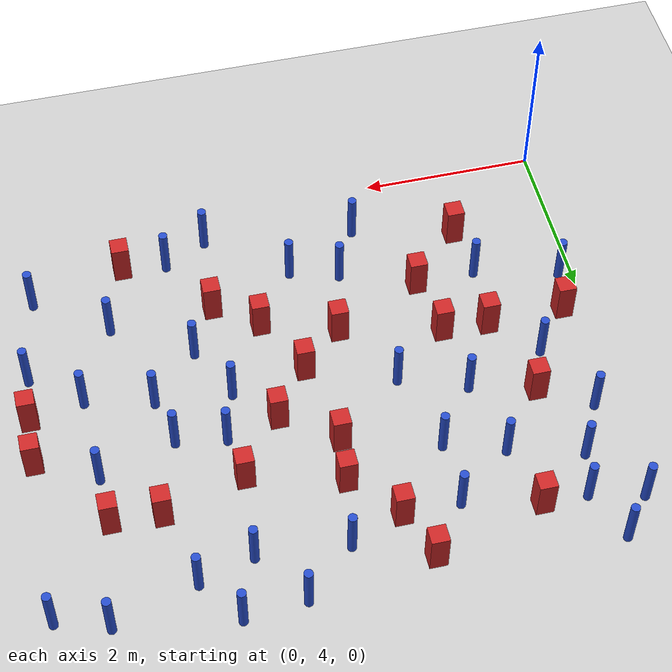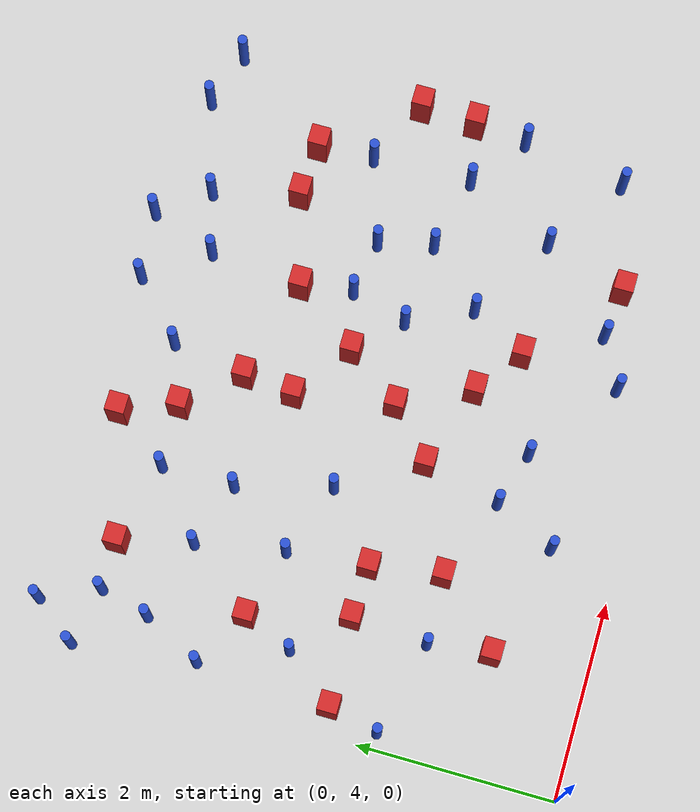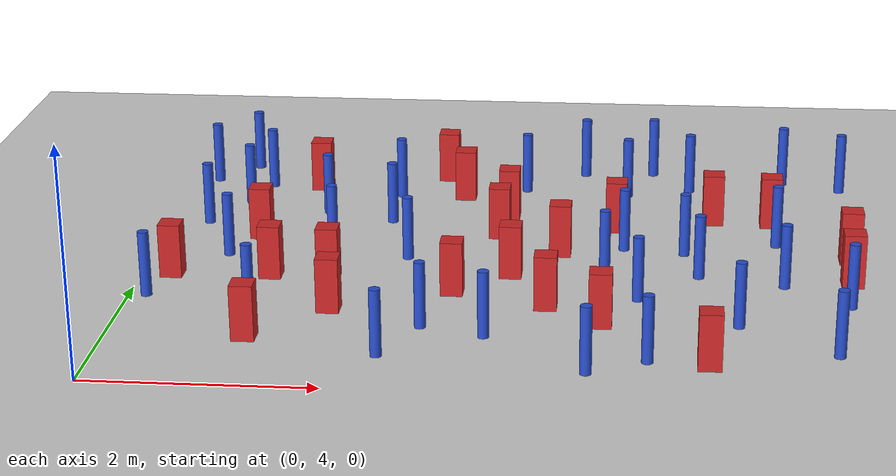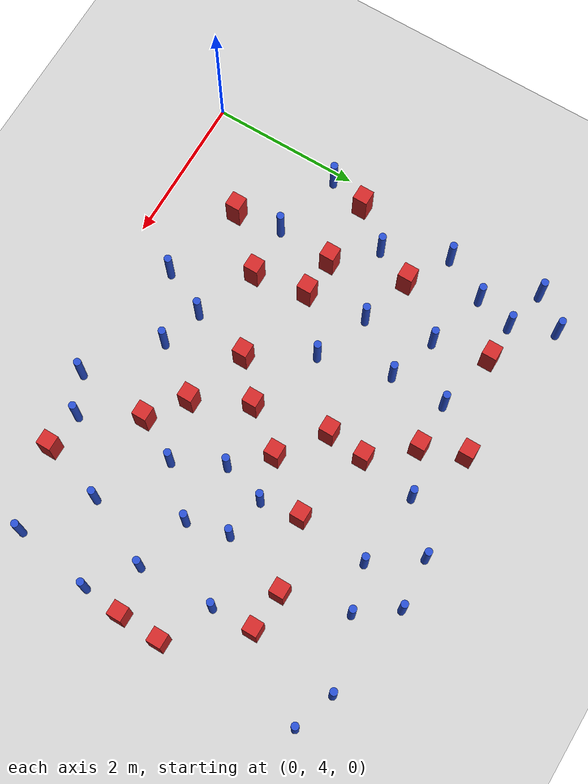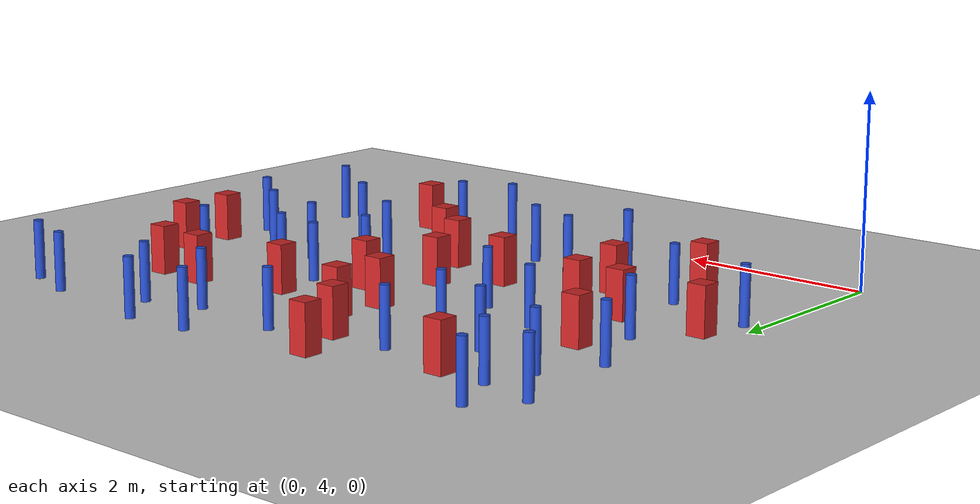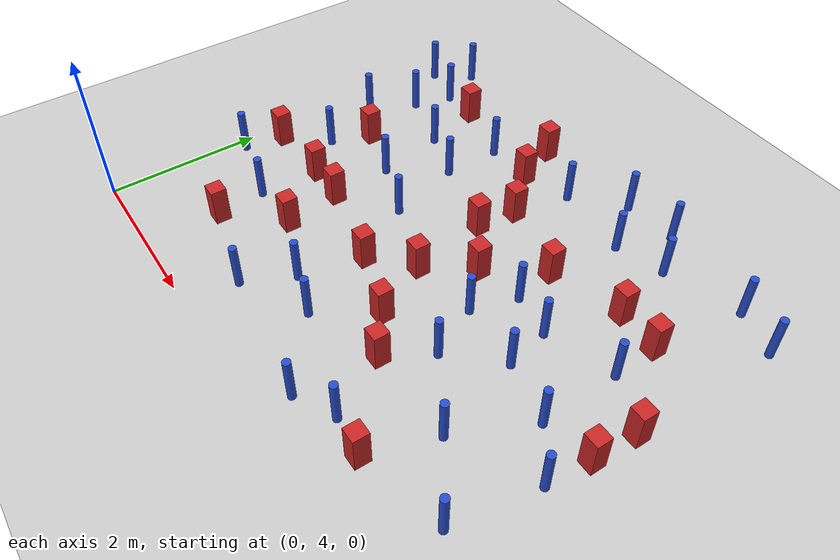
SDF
<sdf version="1.6">
 <world name="default">
  <model name="ground_plane">
   <static>1</static>
   <link name="link">
    <collision name="collision">
     <geometry><plane><normal>0 0 1</normal><size>100 100</size></plane></geometry>
     <surface><friction><ode><mu>100</mu><mu2>50</mu2></ode></friction></surface>
    </collision>
    <visual name="visual">
     <cast_shadows>0</cast_shadows>
     <geometry><plane><normal>0 0 1</normal><size>100 100</size></plane></geometry>
     <material>
      <ambient>1.0 1.0 1.0 1.0</ambient>
      <diffuse>0.8 0.8 0.8 1.0</diffuse>
      <specular>0.01 0.01 0.01 1.000000</specular>
     </material>
    </visual>
   </link>
  </model>
  <model name="pole_obstacle1">
   <static>true</static>
   <pose>5.38026649149 5.48574369236 -3.09024884793e-07 -7.19054271911e-07 -2.1131507516e-07 -1.93935509277e-07</pose>
   <link name="link">
    <pose>0 0 0.3 0 -0 0</pose>
    <inertial>
     <mass>1</mass>
     <inertia><ixx>0.145833</ixx><ixy>0</ixy><ixz>0</ixz><iyy>0.145833</iyy><iyz>0</iyz><izz>0.125</izz></inertia>
    </inertial>
    <collision name="collision">
     <geometry><cylinder><radius>0.05</radius><length>.6</length></cylinder></geometry>
    </collision>
    <visual name="visual">
     <geometry><cylinder><radius>0.05</radius><length>.6</length></cylinder></geometry>
     <material>
      <script><name>Gazebo/Blue</name><uri>file://media/materials/scripts/gazebo.material</uri></script>
     </material>
    </visual>
   </link>
  </model>
  <model name="square_post_obstacle13">
   <static>true</static>
   <pose>2.54253266543 9.15945608791 -4.36207812815e-07 3.75137919937e-06 9.77721102514e-07 2.47381364184e-05</pose>
   <link name="link">
    <pose>0 0 0.25 0 -0 0</pose>
    <inertial>
     <mass>100</mass>
     <inertia>
      <ixx>0.166667</ixx>
      <ixy>0</ixy>
      <ixz>0</ixz>
      <iyy>0.166667</iyy>
      <iyz>0</iyz>
      <izz>0.166667</izz>
     </inertia>
    </inertial>
    <collision name="collision"><geometry><box><size>.2 .2 .5</size></box></geometry></collision>
    <visual name="visual">
     <geometry><box><size>.2 .2 .5</size></box></geometry>
     <material>
      <script><name>Gazebo/Red</name><uri>file://media/materials/scripts/gazebo.material</uri></script>
     </material>
    </visual>
   </link>
  </model>
  <model name="pole_obstacle8">
   <static>true</static>
   <pose>2.66010328651 5.29040970579 -3.09024884793e-07 -7.19054271912e-07 -2.11315075134e-07 -1.93935509266e-07</pose>
   <link name="link">
    <pose>0 0 0.3 0 -0 0</pose>
    <inertial>
     <mass>1</mass>
     <inertia><ixx>0.145833</ixx><ixy>0</ixy><ixz>0</ixz><iyy>0.145833</iyy><iyz>0</iyz><izz>0.125</izz></inertia>
    </inertial>
    <collision name="collision">
     <geometry><cylinder><radius>0.05</radius><length>.6</length></cylinder></geometry>
    </collision>
    <visual name="visual">
     <geometry><cylinder><radius>0.05</radius><length>.6</length></cylinder></geometry>
     <material>
      <script><name>Gazebo/Blue</name><uri>file://media/materials/scripts/gazebo.material</uri></script>
     </material>
    </visual>
   </link>
  </model>
  <model name="square_post_obstacle14">
   <static>true</static>
   <pose>2.76166165576 8.59688035177 -4.36207812815e-07 3.75137919937e-06 9.77721102514e-07 2.47381364184e-05</pose>
   <link name="link">
    <pose>0 0 0.25 0 -0 0</pose>
    <inertial>
     <mass>100</mass>
     <inertia>
      <ixx>0.166667</ixx>
      <ixy>0</ixy>
      <ixz>0</ixz>
      <iyy>0.166667</iyy>
      <iyz>0</iyz>
      <izz>0.166667</izz>
     </inertia>
    </inertial>
    <collision name="collision"><geometry><box><size>.2 .2 .5</size></box></geometry></collision>
    <visual name="visual">
     <geometry><box><size>.2 .2 .5</size></box></geometry>
     <material>
      <script><name>Gazebo/Red</name><uri>file://media/materials/scripts/gazebo.material</uri></script>
     </material>
    </visual>
   </link>
  </model>
  <model name="pole_obstacle18">
   <static>true</static>
   <pose>4.50732417041 6.02375371996 -3.09024884793e-07 -7.19054271911e-07 -2.1131507516e-07 -1.93935509277e-07</pose>
   <link name="link">
    <pose>0 0 0.3 0 -0 0</pose>
    <inertial>
     <mass>1</mass>
     <inertia><ixx>0.145833</ixx><ixy>0</ixy><ixz>0</ixz><iyy>0.145833</iyy><iyz>0</iyz><izz>0.125</izz></inertia>
    </inertial>
    <collision name="collision">
     <geometry><cylinder><radius>0.05</radius><length>.6</length></cylinder></geometry>
    </collision>
    <visual name="visual">
     <geometry><cylinder><radius>0.05</radius><length>.6</length></cylinder></geometry>
     <material>
      <script><name>Gazebo/Blue</name><uri>file://media/materials/scripts/gazebo.material</uri></script>
     </material>
    </visual>
   </link>
  </model>
  <model name="pole_obstacle22">
   <static>true</static>
   <pose>5.81464633451 6.41632035371 -3.09024884793e-07 -7.19054271911e-07 -2.1131507516e-07 -1.93935509277e-07</pose>
   <link name="link">
    <pose>0 0 0.3 0 -0 0</pose>
    <inertial>
     <mass>1</mass>
     <inertia><ixx>0.145833</ixx><ixy>0</ixy><ixz>0</ixz><iyy>0.145833</iyy><iyz>0</iyz><izz>0.125</izz></inertia>
    </inertial>
    <collision name="collision">
     <geometry><cylinder><radius>0.05</radius><length>.6</length></cylinder></geometry>
    </collision>
    <visual name="visual">
     <geometry><cylinder><radius>0.05</radius><length>.6</length></cylinder></geometry>
     <material>
      <script><name>Gazebo/Blue</name><uri>file://media/materials/scripts/gazebo.material</uri></script>
     </material>
    </visual>
   </link>
  </model>
  <model name="pole_obstacle26">
   <static>true</static>
   <pose>0.187268150101 8.93501671482 -3.09024884793e-07 -7.19054271911e-07 -2.11315075161e-07 -1.9393550928e-07</pose>
   <link name="link">
    <pose>0 0 0.3 0 -0 0</pose>
    <inertial>
     <mass>1</mass>
     <inertia><ixx>0.145833</ixx><ixy>0</ixy><ixz>0</ixz><iyy>0.145833</iyy><iyz>0</iyz><izz>0.125</izz></inertia>
    </inertial>
    <collision name="collision">
     <geometry><cylinder><radius>0.05</radius><length>.6</length></cylinder></geometry>
    </collision>
    <visual name="visual">
     <geometry><cylinder><radius>0.05</radius><length>.6</length></cylinder></geometry>
     <material>
      <script><name>Gazebo/Blue</name><uri>file://media/materials/scripts/gazebo.material</uri></script>
     </material>
    </visual>
   </link>
  </model>
  <model name="pole_obstacle30">
   <static>true</static>
   <pose>2.37195982201 6.8903305986 -3.09024884793e-07 -7.19054271912e-07 -2.11315075134e-07 -1.93935509266e-07</pose>
   <link name="link">
    <pose>0 0 0.3 0 -0 0</pose>
    <inertial>
     <mass>1</mass>
     <inertia><ixx>0.145833</ixx><ixy>0</ixy><ixz>0</ixz><iyy>0.145833</iyy><iyz>0</iyz><izz>0.125</izz></inertia>
    </inertial>
    <collision name="collision">
     <geometry><cylinder><radius>0.05</radius><length>.6</length></cylinder></geometry>
    </collision>
    <visual name="visual">
     <geometry><cylinder><radius>0.05</radius><length>.6</length></cylinder></geometry>
     <material>
      <script><name>Gazebo/Blue</name><uri>file://media/materials/scripts/gazebo.material</uri></script>
     </material>
    </visual>
   </link>
  </model>
  <model name="pole_obstacle44">
   <static>true</static>
   <pose>1.45611591994 8.06184827066 -3.09024884793e-07 -7.19054271912e-07 -2.1131507515e-07 -1.93935509273e-07</pose>
   <link name="link">
    <pose>0 0 0.3 0 -0 0</pose>
    <inertial>
     <mass>1</mass>
     <inertia><ixx>0.145833</ixx><ixy>0</ixy><ixz>0</ixz><iyy>0.145833</iyy><iyz>0</iyz><izz>0.125</izz></inertia>
    </inertial>
    <collision name="collision">
     <geometry><cylinder><radius>0.05</radius><length>.6</length></cylinder></geometry>
    </collision>
    <visual name="visual">
     <geometry><cylinder><radius>0.05</radius><length>.6</length></cylinder></geometry>
     <material>
      <script><name>Gazebo/Blue</name><uri>file://media/materials/scripts/gazebo.material</uri></script>
     </material>
    </visual>
   </link>
  </model>
  <model name="pole_obstacle53">
   <static>true</static>
   <pose>3.36045471536 8.83396126772 -3.09024884848e-07 -7.19054271902e-07 -2.11315075199e-07 -1.93935509286e-07</pose>
   <link name="link">
    <pose>0 0 0.3 0 -0 0</pose>
    <inertial>
     <mass>1</mass>
     <inertia><ixx>0.145833</ixx><ixy>0</ixy><ixz>0</ixz><iyy>0.145833</iyy><iyz>0</iyz><izz>0.125</izz></inertia>
    </inertial>
    <collision name="collision">
     <geometry><cylinder><radius>0.05</radius><length>.6</length></cylinder></geometry>
    </collision>
    <visual name="visual">
     <geometry><cylinder><radius>0.05</radius><length>.6</length></cylinder></geometry>
     <material>
      <script><name>Gazebo/Blue</name><uri>file://media/materials/scripts/gazebo.material</uri></script>
     </material>
    </visual>
   </link>
  </model>
  <model name="pole_obstacle58">
   <static>true</static>
   <pose>4.36511978532 7.25159574913 -3.09024884793e-07 -7.19054271911e-07 -2.1131507516e-07 -1.93935509277e-07</pose>
   <link name="link">
    <pose>0 0 0.3 0 -0 0</pose>
    <inertial>
     <mass>1</mass>
     <inertia><ixx>0.145833</ixx><ixy>0</ixy><ixz>0</ixz><iyy>0.145833</iyy><iyz>0</iyz><izz>0.125</izz></inertia>
    </inertial>
    <collision name="collision">
     <geometry><cylinder><radius>0.05</radius><length>.6</length></cylinder></geometry>
    </collision>
    <visual name="visual">
     <geometry><cylinder><radius>0.05</radius><length>.6</length></cylinder></geometry>
     <material>
      <script><name>Gazebo/Blue</name><uri>file://media/materials/scripts/gazebo.material</uri></script>
     </material>
    </visual>
   </link>
  </model>
  <model name="pole_obstacle60">
   <static>true</static>
   <pose>0.699789372789 6.86366089136 -3.09024884793e-07 -7.19054271912e-07 -2.11315075129e-07 -1.93935509261e-07</pose>
   <link name="link">
    <pose>0 0 0.3 0 -0 0</pose>
    <inertial>
     <mass>1</mass>
     <inertia><ixx>0.145833</ixx><ixy>0</ixy><ixz>0</ixz><iyy>0.145833</iyy><iyz>0</iyz><izz>0.125</izz></inertia>
    </inertial>
    <collision name="collision">
     <geometry><cylinder><radius>0.05</radius><length>.6</length></cylinder></geometry>
    </collision>
    <visual name="visual">
     <geometry><cylinder><radius>0.05</radius><length>.6</length></cylinder></geometry>
     <material>
      <script><name>Gazebo/Blue</name><uri>file://media/materials/scripts/gazebo.material</uri></script>
     </material>
    </visual>
   </link>
  </model>
  <model name="pole_obstacle61">
   <static>true</static>
   <pose>4.10413252432 4.44278507739 -3.09024884793e-07 -7.19054271911e-07 -2.1131507516e-07 -1.93935509277e-07</pose>
   <link name="link">
    <pose>0 0 0.3 0 -0 0</pose>
    <inertial>
     <mass>1</mass>
     <inertia><ixx>0.145833</ixx><ixy>0</ixy><ixz>0</ixz><iyy>0.145833</iyy><iyz>0</iyz><izz>0.125</izz></inertia>
    </inertial>
    <collision name="collision">
     <geometry><cylinder><radius>0.05</radius><length>.6</length></cylinder></geometry>
    </collision>
    <visual name="visual">
     <geometry><cylinder><radius>0.05</radius><length>.6</length></cylinder></geometry>
     <material>
      <script><name>Gazebo/Blue</name><uri>file://media/materials/scripts/gazebo.material</uri></script>
     </material>
    </visual>
   </link>
  </model>
  <model name="pole_obstacle62">
   <static>true</static>
   <pose>2.36133899596 4.66959848623 -3.09024884793e-07 -7.19054271912e-07 -2.11315075134e-07 -1.93935509266e-07</pose>
   <link name="link">
    <pose>0 0 0.3 0 -0 0</pose>
    <inertial>
     <mass>1</mass>
     <inertia><ixx>0.145833</ixx><ixy>0</ixy><ixz>0</ixz><iyy>0.145833</iyy><iyz>0</iyz><izz>0.125</izz></inertia>
    </inertial>
    <collision name="collision">
     <geometry><cylinder><radius>0.05</radius><length>.6</length></cylinder></geometry>
    </collision>
    <visual name="visual">
     <geometry><cylinder><radius>0.05</radius><length>.6</length></cylinder></geometry>
     <material>
      <script><name>Gazebo/Blue</name><uri>file://media/materials/scripts/gazebo.material</uri></script>
     </material>
    </visual>
   </link>
  </model>
  <model name="square_post_obstacle76">
   <static>true</static>
   <pose>6.45238056943 7.10489939612 -4.36207812815e-07 3.75137919937e-06 9.77721102514e-07 2.47381364184e-05</pose>
   <link name="link">
    <pose>0 0 0.25 0 -0 0</pose>
    <inertial>
     <mass>100</mass>
     <inertia>
      <ixx>0.166667</ixx>
      <ixy>0</ixy>
      <ixz>0</ixz>
      <iyy>0.166667</iyy>
      <iyz>0</iyz>
      <izz>0.166667</izz>
     </inertia>
    </inertial>
    <collision name="collision"><geometry><box><size>.2 .2 .5</size></box></geometry></collision>
    <visual name="visual">
     <geometry><box><size>.2 .2 .5</size></box></geometry>
     <material>
      <script><name>Gazebo/Red</name><uri>file://media/materials/scripts/gazebo.material</uri></script>
     </material>
    </visual>
   </link>
  </model>
  <model name="pole_obstacle72">
   <static>true</static>
   <pose>6.37454830373 5.98330063779 -3.09024884793e-07 -7.19054271911e-07 -2.1131507516e-07 -1.93935509277e-07</pose>
   <link name="link">
    <pose>0 0 0.3 0 -0 0</pose>
    <inertial>
     <mass>1</mass>
     <inertia><ixx>0.145833</ixx><ixy>0</ixy><ixz>0</ixz><iyy>0.145833</iyy><iyz>0</iyz><izz>0.125</izz></inertia>
    </inertial>
    <collision name="collision">
     <geometry><cylinder><radius>0.05</radius><length>.6</length></cylinder></geometry>
    </collision>
    <visual name="visual">
     <geometry><cylinder><radius>0.05</radius><length>.6</length></cylinder></geometry>
     <material>
      <script><name>Gazebo/Blue</name><uri>file://media/materials/scripts/gazebo.material</uri></script>
     </material>
    </visual>
   </link>
  </model>
  <model name="pole_obstacle75">
   <static>true</static>
   <pose>4.99019746037 8.92230137979 -3.09024884793e-07 -7.19054271912e-07 -2.1131507513e-07 -1.93935509261e-07</pose>
   <link name="link">
    <pose>0 0 0.3 0 -0 0</pose>
    <inertial>
     <mass>1</mass>
     <inertia><ixx>0.145833</ixx><ixy>0</ixy><ixz>0</ixz><iyy>0.145833</iyy><iyz>0</iyz><izz>0.125</izz></inertia>
    </inertial>
    <collision name="collision">
     <geometry><cylinder><radius>0.05</radius><length>.6</length></cylinder></geometry>
    </collision>
    <visual name="visual">
     <geometry><cylinder><radius>0.05</radius><length>.6</length></cylinder></geometry>
     <material>
      <script><name>Gazebo/Blue</name><uri>file://media/materials/scripts/gazebo.material</uri></script>
     </material>
    </visual>
   </link>
  </model>
  <model name="pole_obstacle88">
   <static>true</static>
   <pose>2.11425900414 7.84481002918 -3.09024884793e-07 -7.19054271912e-07 -2.11315075134e-07 -1.93935509266e-07</pose>
   <link name="link">
    <pose>0 0 0.3 0 -0 0</pose>
    <inertial>
     <mass>1</mass>
     <inertia><ixx>0.145833</ixx><ixy>0</ixy><ixz>0</ixz><iyy>0.145833</iyy><iyz>0</iyz><izz>0.125</izz></inertia>
    </inertial>
    <collision name="collision">
     <geometry><cylinder><radius>0.05</radius><length>.6</length></cylinder></geometry>
    </collision>
    <visual name="visual">
     <geometry><cylinder><radius>0.05</radius><length>.6</length></cylinder></geometry>
     <material>
      <script><name>Gazebo/Blue</name><uri>file://media/materials/scripts/gazebo.material</uri></script>
     </material>
    </visual>
   </link>
  </model>
  <model name="pole_obstacle89">
   <static>true</static>
   <pose>3.93647625684 9.35745305252 -3.09024884848e-07 -7.19054271902e-07 -2.11315075199e-07 -1.93935509286e-07</pose>
   <link name="link">
    <pose>0 0 0.3 0 -0 0</pose>
    <inertial>
     <mass>1</mass>
     <inertia><ixx>0.145833</ixx><ixy>0</ixy><ixz>0</ixz><iyy>0.145833</iyy><iyz>0</iyz><izz>0.125</izz></inertia>
    </inertial>
    <collision name="collision">
     <geometry><cylinder><radius>0.05</radius><length>.6</length></cylinder></geometry>
    </collision>
    <visual name="visual">
     <geometry><cylinder><radius>0.05</radius><length>.6</length></cylinder></geometry>
     <material>
      <script><name>Gazebo/Blue</name><uri>file://media/materials/scripts/gazebo.material</uri></script>
     </material>
    </visual>
   </link>
  </model>
  <model name="square_post_obstacle83">
   <static>true</static>
   <pose>6.42711600698 6.53205979732 -4.36207812815e-07 3.75137919937e-06 9.77721102514e-07 2.47381364184e-05</pose>
   <link name="link">
    <pose>0 0 0.25 0 -0 0</pose>
    <inertial>
     <mass>100</mass>
     <inertia>
      <ixx>0.166667</ixx>
      <ixy>0</ixy>
      <ixz>0</ixz>
      <iyy>0.166667</iyy>
      <iyz>0</iyz>
      <izz>0.166667</izz>
     </inertia>
    </inertial>
    <collision name="collision"><geometry><box><size>.2 .2 .5</size></box></geometry></collision>
    <visual name="visual">
     <geometry><box><size>.2 .2 .5</size></box></geometry>
     <material>
      <script><name>Gazebo/Red</name><uri>file://media/materials/scripts/gazebo.material</uri></script>
     </material>
    </visual>
   </link>
  </model>
  <model name="square_post_obstacle85">
   <static>true</static>
   <pose>1.20354689015 4.97026685119 -4.36207812815e-07 3.75137919937e-06 9.77721102514e-07 2.47381364184e-05</pose>
   <link name="link">
    <pose>0 0 0.25 0 -0 0</pose>
    <inertial>
     <mass>100</mass>
     <inertia>
      <ixx>0.166667</ixx>
      <ixy>0</ixy>
      <ixz>0</ixz>
      <iyy>0.166667</iyy>
      <iyz>0</iyz>
      <izz>0.166667</izz>
     </inertia>
    </inertial>
    <collision name="collision"><geometry><box><size>.2 .2 .5</size></box></geometry></collision>
    <visual name="visual">
     <geometry><box><size>.2 .2 .5</size></box></geometry>
     <material>
      <script><name>Gazebo/Red</name><uri>file://media/materials/scripts/gazebo.material</uri></script>
     </material>
    </visual>
   </link>
  </model>
  <model name="pole_obstacle97">
   <static>true</static>
   <pose>0.640638795939 8.2939387732 -3.09024884793e-07 -7.19054271911e-07 -2.11315075158e-07 -1.93935509277e-07</pose>
   <link name="link">
    <pose>0 0 0.3 0 -0 0</pose>
    <inertial>
     <mass>1</mass>
     <inertia><ixx>0.145833</ixx><ixy>0</ixy><ixz>0</ixz><iyy>0.145833</iyy><iyz>0</iyz><izz>0.125</izz></inertia>
    </inertial>
    <collision name="collision">
     <geometry><cylinder><radius>0.05</radius><length>.6</length></cylinder></geometry>
    </collision>
    <visual name="visual">
     <geometry><cylinder><radius>0.05</radius><length>.6</length></cylinder></geometry>
     <material>
      <script><name>Gazebo/Blue</name><uri>file://media/materials/scripts/gazebo.material</uri></script>
     </material>
    </visual>
   </link>
  </model>
  <model name="pole_obstacle101">
   <static>true</static>
   <pose>2.11595410131 8.59120270364 -3.09024884848e-07 -7.19054271902e-07 -2.11315075199e-07 -1.93935509286e-07</pose>
   <link name="link">
    <pose>0 0 0.3 0 -0 0</pose>
    <inertial>
     <mass>1</mass>
     <inertia><ixx>0.145833</ixx><ixy>0</ixy><ixz>0</ixz><iyy>0.145833</iyy><iyz>0</iyz><izz>0.125</izz></inertia>
    </inertial>
    <collision name="collision">
     <geometry><cylinder><radius>0.05</radius><length>.6</length></cylinder></geometry>
    </collision>
    <visual name="visual">
     <geometry><cylinder><radius>0.05</radius><length>.6</length></cylinder></geometry>
     <material>
      <script><name>Gazebo/Blue</name><uri>file://media/materials/scripts/gazebo.material</uri></script>
     </material>
    </visual>
   </link>
  </model>
  <model name="pole_obstacle102">
   <static>true</static>
   <pose>4.62594715097 9.4199028146 -3.09024884793e-07 -7.19054271912e-07 -2.1131507513e-07 -1.93935509261e-07</pose>
   <link name="link">
    <pose>0 0 0.3 0 -0 0</pose>
    <inertial>
     <mass>1</mass>
     <inertia><ixx>0.145833</ixx><ixy>0</ixy><ixz>0</ixz><iyy>0.145833</iyy><iyz>0</iyz><izz>0.125</izz></inertia>
    </inertial>
    <collision name="collision">
     <geometry><cylinder><radius>0.05</radius><length>.6</length></cylinder></geometry>
    </collision>
    <visual name="visual">
     <geometry><cylinder><radius>0.05</radius><length>.6</length></cylinder></geometry>
     <material>
      <script><name>Gazebo/Blue</name><uri>file://media/materials/scripts/gazebo.material</uri></script>
     </material>
    </visual>
   </link>
  </model>
  <model name="square_post_obstacle91">
   <static>true</static>
   <pose>4.27875321743 7.78025416779 -4.36207812815e-07 3.75137919937e-06 9.77721102514e-07 2.47381364184e-05</pose>
   <link name="link">
    <pose>0 0 0.25 0 -0 0</pose>
    <inertial>
     <mass>100</mass>
     <inertia>
      <ixx>0.166667</ixx>
      <ixy>0</ixy>
      <ixz>0</ixz>
      <iyy>0.166667</iyy>
      <iyz>0</iyz>
      <izz>0.166667</izz>
     </inertia>
    </inertial>
    <collision name="collision"><geometry><box><size>.2 .2 .5</size></box></geometry></collision>
    <visual name="visual">
     <geometry><box><size>.2 .2 .5</size></box></geometry>
     <material>
      <script><name>Gazebo/Red</name><uri>file://media/materials/scripts/gazebo.material</uri></script>
     </material>
    </visual>
   </link>
  </model>
  <model name="pole_obstacle106">
   <static>true</static>
   <pose>0.340924270221 7.70239868861 -3.09024884793e-07 -7.19054271912e-07 -2.1131507513e-07 -1.93935509262e-07</pose>
   <link name="link">
    <pose>0 0 0.3 0 -0 0</pose>
    <inertial>
     <mass>1</mass>
     <inertia><ixx>0.145833</ixx><ixy>0</ixy><ixz>0</ixz><iyy>0.145833</iyy><iyz>0</iyz><izz>0.125</izz></inertia>
    </inertial>
    <collision name="collision">
     <geometry><cylinder><radius>0.05</radius><length>.6</length></cylinder></geometry>
    </collision>
    <visual name="visual">
     <geometry><cylinder><radius>0.05</radius><length>.6</length></cylinder></geometry>
     <material>
      <script><name>Gazebo/Blue</name><uri>file://media/materials/scripts/gazebo.material</uri></script>
     </material>
    </visual>
   </link>
  </model>
  <model name="square_post_obstacle94">
   <static>true</static>
   <pose>5.11274729583 4.64767106553 -4.36207812815e-07 3.75137919937e-06 9.77721102514e-07 2.47381364184e-05</pose>
   <link name="link">
    <pose>0 0 0.25 0 -0 0</pose>
    <inertial>
     <mass>100</mass>
     <inertia>
      <ixx>0.166667</ixx>
      <ixy>0</ixy>
      <ixz>0</ixz>
      <iyy>0.166667</iyy>
      <iyz>0</iyz>
      <izz>0.166667</izz>
     </inertia>
    </inertial>
    <collision name="collision"><geometry><box><size>.2 .2 .5</size></box></geometry></collision>
    <visual name="visual">
     <geometry><box><size>.2 .2 .5</size></box></geometry>
     <material>
      <script><name>Gazebo/Red</name><uri>file://media/materials/scripts/gazebo.material</uri></script>
     </material>
    </visual>
   </link>
  </model>
  <model name="pole_obstacle110">
   <static>true</static>
   <pose>4.37139450369 8.74135988131 -3.09024884793e-07 -7.19054271912e-07 -2.1131507513e-07 -1.93935509261e-07</pose>
   <link name="link">
    <pose>0 0 0.3 0 -0 0</pose>
    <inertial>
     <mass>1</mass>
     <inertia><ixx>0.145833</ixx><ixy>0</ixy><ixz>0</ixz><iyy>0.145833</iyy><iyz>0</iyz><izz>0.125</izz></inertia>
    </inertial>
    <collision name="collision">
     <geometry><cylinder><radius>0.05</radius><length>.6</length></cylinder></geometry>
    </collision>
    <visual name="visual">
     <geometry><cylinder><radius>0.05</radius><length>.6</length></cylinder></geometry>
     <material>
      <script><name>Gazebo/Blue</name><uri>file://media/materials/scripts/gazebo.material</uri></script>
     </material>
    </visual>
   </link>
  </model>
  <model name="square_post_obstacle102">
   <static>true</static>
   <pose>3.17676116514 7.53954941941 -4.36207812815e-07 3.75137919937e-06 9.77721102514e-07 2.47381364184e-05</pose>
   <link name="link">
    <pose>0 0 0.25 0 -0 0</pose>
    <inertial>
     <mass>100</mass>
     <inertia>
      <ixx>0.166667</ixx>
      <ixy>0</ixy>
      <ixz>0</ixz>
      <iyy>0.166667</iyy>
      <iyz>0</iyz>
      <izz>0.166667</izz>
     </inertia>
    </inertial>
    <collision name="collision"><geometry><box><size>.2 .2 .5</size></box></geometry></collision>
    <visual name="visual">
     <geometry><box><size>.2 .2 .5</size></box></geometry>
     <material>
      <script><name>Gazebo/Red</name><uri>file://media/materials/scripts/gazebo.material</uri></script>
     </material>
    </visual>
   </link>
  </model>
  <model name="pole_obstacle119">
   <static>true</static>
   <pose>5.9331205353 9.21484696234 -3.09024884793e-07 -7.19054271912e-07 -2.1131507513e-07 -1.93935509261e-07</pose>
   <link name="link">
    <pose>0 0 0.3 0 -0 0</pose>
    <inertial>
     <mass>1</mass>
     <inertia><ixx>0.145833</ixx><ixy>0</ixy><ixz>0</ixz><iyy>0.145833</iyy><iyz>0</iyz><izz>0.125</izz></inertia>
    </inertial>
    <collision name="collision">
     <geometry><cylinder><radius>0.05</radius><length>.6</length></cylinder></geometry>
    </collision>
    <visual name="visual">
     <geometry><cylinder><radius>0.05</radius><length>.6</length></cylinder></geometry>
     <material>
      <script><name>Gazebo/Blue</name><uri>file://media/materials/scripts/gazebo.material</uri></script>
     </material>
    </visual>
   </link>
  </model>
  <model name="pole_obstacle128">
   <static>true</static>
   <pose>5.787669759 7.43627864523 -3.09024884793e-07 -7.19054271911e-07 -2.1131507516e-07 -1.93935509277e-07</pose>
   <link name="link">
    <pose>0 0 0.3 0 -0 0</pose>
    <inertial>
     <mass>1</mass>
     <inertia><ixx>0.145833</ixx><ixy>0</ixy><ixz>0</ixz><iyy>0.145833</iyy><iyz>0</iyz><izz>0.125</izz></inertia>
    </inertial>
    <collision name="collision">
     <geometry><cylinder><radius>0.05</radius><length>.6</length></cylinder></geometry>
    </collision>
    <visual name="visual">
     <geometry><cylinder><radius>0.05</radius><length>.6</length></cylinder></geometry>
     <material>
      <script><name>Gazebo/Blue</name><uri>file://media/materials/scripts/gazebo.material</uri></script>
     </material>
    </visual>
   </link>
  </model>
  <model name="pole_obstacle129">
   <static>true</static>
   <pose>6.49810766889 9.02878037737 -3.09024884793e-07 -7.19054271912e-07 -2.1131507513e-07 -1.93935509261e-07</pose>
   <link name="link">
    <pose>0 0 0.3 0 -0 0</pose>
    <inertial>
     <mass>1</mass>
     <inertia><ixx>0.145833</ixx><ixy>0</ixy><ixz>0</ixz><iyy>0.145833</iyy><iyz>0</iyz><izz>0.125</izz></inertia>
    </inertial>
    <collision name="collision">
     <geometry><cylinder><radius>0.05</radius><length>.6</length></cylinder></geometry>
    </collision>
    <visual name="visual">
     <geometry><cylinder><radius>0.05</radius><length>.6</length></cylinder></geometry>
     <material>
      <script><name>Gazebo/Blue</name><uri>file://media/materials/scripts/gazebo.material</uri></script>
     </material>
    </visual>
   </link>
  </model>
  <model name="square_post_obstacle115">
   <static>true</static>
   <pose>1.82292826157 5.62224253602 -4.36207812815e-07 3.75137919937e-06 9.77721102514e-07 2.47381364184e-05</pose>
   <link name="link">
    <pose>0 0 0.25 0 -0 0</pose>
    <inertial>
     <mass>100</mass>
     <inertia>
      <ixx>0.166667</ixx>
      <ixy>0</ixy>
      <ixz>0</ixz>
      <iyy>0.166667</iyy>
      <iyz>0</iyz>
      <izz>0.166667</izz>
     </inertia>
    </inertial>
    <collision name="collision"><geometry><box><size>.2 .2 .5</size></box></geometry></collision>
    <visual name="visual">
     <geometry><box><size>.2 .2 .5</size></box></geometry>
     <material>
      <script><name>Gazebo/Red</name><uri>file://media/materials/scripts/gazebo.material</uri></script>
     </material>
    </visual>
   </link>
  </model>
  <model name="pole_obstacle136">
   <static>true</static>
   <pose>1.12107838532 5.59361317425 -3.09024884793e-07 -7.19054271912e-07 -2.11315075134e-07 -1.93935509265e-07</pose>
   <link name="link">
    <pose>0 0 0.3 0 -0 0</pose>
    <inertial>
     <mass>1</mass>
     <inertia><ixx>0.145833</ixx><ixy>0</ixy><ixz>0</ixz><iyy>0.145833</iyy><iyz>0</iyz><izz>0.125</izz></inertia>
    </inertial>
    <collision name="collision">
     <geometry><cylinder><radius>0.05</radius><length>.6</length></cylinder></geometry>
    </collision>
    <visual name="visual">
     <geometry><cylinder><radius>0.05</radius><length>.6</length></cylinder></geometry>
     <material>
      <script><name>Gazebo/Blue</name><uri>file://media/materials/scripts/gazebo.material</uri></script>
     </material>
    </visual>
   </link>
  </model>
  <model name="square_post_obstacle119">
   <static>true</static>
   <pose>0.91547667629 7.37099835551 -4.36207812815e-07 3.75137919937e-06 9.77721102514e-07 2.47381364184e-05</pose>
   <link name="link">
    <pose>0 0 0.25 0 -0 0</pose>
    <inertial>
     <mass>100</mass>
     <inertia>
      <ixx>0.166667</ixx>
      <ixy>0</ixy>
      <ixz>0</ixz>
      <iyy>0.166667</iyy>
      <iyz>0</iyz>
      <izz>0.166667</izz>
     </inertia>
    </inertial>
    <collision name="collision"><geometry><box><size>.2 .2 .5</size></box></geometry></collision>
    <visual name="visual">
     <geometry><box><size>.2 .2 .5</size></box></geometry>
     <material>
      <script><name>Gazebo/Red</name><uri>file://media/materials/scripts/gazebo.material</uri></script>
     </material>
    </visual>
   </link>
  </model>
  <model name="square_post_obstacle128">
   <static>true</static>
   <pose>3.35030161562 6.53254409794 -4.36207812815e-07 3.75137919937e-06 9.77721102514e-07 2.47381364184e-05</pose>
   <link name="link">
    <pose>0 0 0.25 0 -0 0</pose>
    <inertial>
     <mass>100</mass>
     <inertia>
      <ixx>0.166667</ixx>
      <ixy>0</ixy>
      <ixz>0</ixz>
      <iyy>0.166667</iyy>
      <iyz>0</iyz>
      <izz>0.166667</izz>
     </inertia>
    </inertial>
    <collision name="collision"><geometry><box><size>.2 .2 .5</size></box></geometry></collision>
    <visual name="visual">
     <geometry><box><size>.2 .2 .5</size></box></geometry>
     <material>
      <script><name>Gazebo/Red</name><uri>file://media/materials/scripts/gazebo.material</uri></script>
     </material>
    </visual>
   </link>
  </model>
  <model name="square_post_obstacle132">
   <static>true</static>
   <pose>0.281534227794 6.34311875485 -4.36207812815e-07 3.75137919937e-06 9.77721102514e-07 2.47381364184e-05</pose>
   <link name="link">
    <pose>0 0 0.25 0 -0 0</pose>
    <inertial>
     <mass>100</mass>
     <inertia>
      <ixx>0.166667</ixx>
      <ixy>0</ixy>
      <ixz>0</ixz>
      <iyy>0.166667</iyy>
      <iyz>0</iyz>
      <izz>0.166667</izz>
     </inertia>
    </inertial>
    <collision name="collision"><geometry><box><size>.2 .2 .5</size></box></geometry></collision>
    <visual name="visual">
     <geometry><box><size>.2 .2 .5</size></box></geometry>
     <material>
      <script><name>Gazebo/Red</name><uri>file://media/materials/scripts/gazebo.material</uri></script>
     </material>
    </visual>
   </link>
  </model>
  <model name="pole_obstacle147">
   <static>true</static>
   <pose>0.52969314201 9.36839489183 -3.09024884793e-07 -7.19054271912e-07 -2.11315075162e-07 -1.93935509279e-07</pose>
   <link name="link">
    <pose>0 0 0.3 0 -0 0</pose>
    <inertial>
     <mass>1</mass>
     <inertia><ixx>0.145833</ixx><ixy>0</ixy><ixz>0</ixz><iyy>0.145833</iyy><iyz>0</iyz><izz>0.125</izz></inertia>
    </inertial>
    <collision name="collision">
     <geometry><cylinder><radius>0.05</radius><length>.6</length></cylinder></geometry>
    </collision>
    <visual name="visual">
     <geometry><cylinder><radius>0.05</radius><length>.6</length></cylinder></geometry>
     <material>
      <script><name>Gazebo/Blue</name><uri>file://media/materials/scripts/gazebo.material</uri></script>
     </material>
    </visual>
   </link>
  </model>
  <model name="square_post_obstacle138">
   <static>true</static>
   <pose>5.75986673049 8.00601390849 -4.36207812815e-07 3.75137919937e-06 9.77721102514e-07 2.47381364184e-05</pose>
   <link name="link">
    <pose>0 0 0.25 0 -0 0</pose>
    <inertial>
     <mass>100</mass>
     <inertia>
      <ixx>0.166667</ixx>
      <ixy>0</ixy>
      <ixz>0</ixz>
      <iyy>0.166667</iyy>
      <iyz>0</iyz>
      <izz>0.166667</izz>
     </inertia>
    </inertial>
    <collision name="collision"><geometry><box><size>.2 .2 .5</size></box></geometry></collision>
    <visual name="visual">
     <geometry><box><size>.2 .2 .5</size></box></geometry>
     <material>
      <script><name>Gazebo/Red</name><uri>file://media/materials/scripts/gazebo.material</uri></script>
     </material>
    </visual>
   </link>
  </model>
  <model name="square_post_obstacle139">
   <static>true</static>
   <pose>3.23453275884 8.06349784873 -4.36207812815e-07 3.75137919937e-06 9.77721102514e-07 2.47381364184e-05</pose>
   <link name="link">
    <pose>0 0 0.25 0 -0 0</pose>
    <inertial>
     <mass>100</mass>
     <inertia>
      <ixx>0.166667</ixx>
      <ixy>0</ixy>
      <ixz>0</ixz>
      <iyy>0.166667</iyy>
      <iyz>0</iyz>
      <izz>0.166667</izz>
     </inertia>
    </inertial>
    <collision name="collision"><geometry><box><size>.2 .2 .5</size></box></geometry></collision>
    <visual name="visual">
     <geometry><box><size>.2 .2 .5</size></box></geometry>
     <material>
      <script><name>Gazebo/Red</name><uri>file://media/materials/scripts/gazebo.material</uri></script>
     </material>
    </visual>
   </link>
  </model>
  <model name="pole_obstacle149">
   <static>true</static>
   <pose>4.19731642954 6.6682955379 -3.09024884793e-07 -7.19054271911e-07 -2.1131507516e-07 -1.93935509277e-07</pose>
   <link name="link">
    <pose>0 0 0.3 0 -0 0</pose>
    <inertial>
     <mass>1</mass>
     <inertia><ixx>0.145833</ixx><ixy>0</ixy><ixz>0</ixz><iyy>0.145833</iyy><iyz>0</iyz><izz>0.125</izz></inertia>
    </inertial>
    <collision name="collision">
     <geometry><cylinder><radius>0.05</radius><length>.6</length></cylinder></geometry>
    </collision>
    <visual name="visual">
     <geometry><cylinder><radius>0.05</radius><length>.6</length></cylinder></geometry>
     <material>
      <script><name>Gazebo/Blue</name><uri>file://media/materials/scripts/gazebo.material</uri></script>
     </material>
    </visual>
   </link>
  </model>
  <model name="pole_obstacle152">
   <static>true</static>
   <pose>5.05274957345 6.5957029763 -3.09024884793e-07 -7.19054271911e-07 -2.1131507516e-07 -1.93935509277e-07</pose>
   <link name="link">
    <pose>0 0 0.3 0 -0 0</pose>
    <inertial>
     <mass>1</mass>
     <inertia><ixx>0.145833</ixx><ixy>0</ixy><ixz>0</ixz><iyy>0.145833</iyy><iyz>0</iyz><izz>0.125</izz></inertia>
    </inertial>
    <collision name="collision">
     <geometry><cylinder><radius>0.05</radius><length>.6</length></cylinder></geometry>
    </collision>
    <visual name="visual">
     <geometry><cylinder><radius>0.05</radius><length>.6</length></cylinder></geometry>
     <material>
      <script><name>Gazebo/Blue</name><uri>file://media/materials/scripts/gazebo.material</uri></script>
     </material>
    </visual>
   </link>
  </model>
  <model name="square_post_obstacle142">
   <static>true</static>
   <pose>1.71072936243 6.34706472011 -4.36207812815e-07 3.75137919937e-06 9.77721102514e-07 2.47381364184e-05</pose>
   <link name="link">
    <pose>0 0 0.25 0 -0 0</pose>
    <inertial>
     <mass>100</mass>
     <inertia>
      <ixx>0.166667</ixx>
      <ixy>0</ixy>
      <ixz>0</ixz>
      <iyy>0.166667</iyy>
      <iyz>0</iyz>
      <izz>0.166667</izz>
     </inertia>
    </inertial>
    <collision name="collision"><geometry><box><size>.2 .2 .5</size></box></geometry></collision>
    <visual name="visual">
     <geometry><box><size>.2 .2 .5</size></box></geometry>
     <material>
      <script><name>Gazebo/Red</name><uri>file://media/materials/scripts/gazebo.material</uri></script>
     </material>
    </visual>
   </link>
  </model>
  <model name="square_post_obstacle146">
   <static>true</static>
   <pose>3.70548365222 5.80837683479 -4.36207812815e-07 3.75137919937e-06 9.77721102514e-07 2.47381364184e-05</pose>
   <link name="link">
    <pose>0 0 0.25 0 -0 0</pose>
    <inertial>
     <mass>100</mass>
     <inertia>
      <ixx>0.166667</ixx>
      <ixy>0</ixy>
      <ixz>0</ixz>
      <iyy>0.166667</iyy>
      <iyz>0</iyz>
      <izz>0.166667</izz>
     </inertia>
    </inertial>
    <collision name="collision"><geometry><box><size>.2 .2 .5</size></box></geometry></collision>
    <visual name="visual">
     <geometry><box><size>.2 .2 .5</size></box></geometry>
     <material>
      <script><name>Gazebo/Red</name><uri>file://media/materials/scripts/gazebo.material</uri></script>
     </material>
    </visual>
   </link>
  </model>
  <model name="square_post_obstacle147">
   <static>true</static>
   <pose>4.19453059949 5.45199430926 -4.36207812815e-07 3.75137919937e-06 9.77721102514e-07 2.47381364184e-05</pose>
   <link name="link">
    <pose>0 0 0.25 0 -0 0</pose>
    <inertial>
     <mass>100</mass>
     <inertia>
      <ixx>0.166667</ixx>
      <ixy>0</ixy>
      <ixz>0</ixz>
      <iyy>0.166667</iyy>
      <iyz>0</iyz>
      <izz>0.166667</izz>
     </inertia>
    </inertial>
    <collision name="collision"><geometry><box><size>.2 .2 .5</size></box></geometry></collision>
    <visual name="visual">
     <geometry><box><size>.2 .2 .5</size></box></geometry>
     <material>
      <script><name>Gazebo/Red</name><uri>file://media/materials/scripts/gazebo.material</uri></script>
     </material>
    </visual>
   </link>
  </model>
  <model name="square_post_obstacle161">
   <static>true</static>
   <pose>3.7730317536 7.1053424124 -4.36207812815e-07 3.75137919937e-06 9.77721102514e-07 2.47381364184e-05</pose>
   <link name="link">
    <pose>0 0 0.25 0 -0 0</pose>
    <inertial>
     <mass>100</mass>
     <inertia>
      <ixx>0.166667</ixx>
      <ixy>0</ixy>
      <ixz>0</ixz>
      <iyy>0.166667</iyy>
      <iyz>0</iyz>
      <izz>0.166667</izz>
     </inertia>
    </inertial>
    <collision name="collision"><geometry><box><size>.2 .2 .5</size></box></geometry></collision>
    <visual name="visual">
     <geometry><box><size>.2 .2 .5</size></box></geometry>
     <material>
      <script><name>Gazebo/Red</name><uri>file://media/materials/scripts/gazebo.material</uri></script>
     </material>
    </visual>
   </link>
  </model>
  <model name="pole_obstacle179">
   <static>true</static>
   <pose>1.62589017788 7.16634577326 -3.09024884793e-07 -7.19054271912e-07 -2.11315075134e-07 -1.93935509265e-07</pose>
   <link name="link">
    <pose>0 0 0.3 0 -0 0</pose>
    <inertial>
     <mass>1</mass>
     <inertia><ixx>0.145833</ixx><ixy>0</ixy><ixz>0</ixz><iyy>0.145833</iyy><iyz>0</iyz><izz>0.125</izz></inertia>
    </inertial>
    <collision name="collision">
     <geometry><cylinder><radius>0.05</radius><length>.6</length></cylinder></geometry>
    </collision>
    <visual name="visual">
     <geometry><cylinder><radius>0.05</radius><length>.6</length></cylinder></geometry>
     <material>
      <script><name>Gazebo/Blue</name><uri>file://media/materials/scripts/gazebo.material</uri></script>
     </material>
    </visual>
   </link>
  </model>
  <model name="square_post_obstacle185">
   <static>true</static>
   <pose>1.18077909541 6.37063801977 -4.36207812815e-07 3.75137919937e-06 9.77721102514e-07 2.47381364184e-05</pose>
   <link name="link">
    <pose>0 0 0.25 0 -0 0</pose>
    <inertial>
     <mass>100</mass>
     <inertia>
      <ixx>0.166667</ixx>
      <ixy>0</ixy>
      <ixz>0</ixz>
      <iyy>0.166667</iyy>
      <iyz>0</iyz>
      <izz>0.166667</izz>
     </inertia>
    </inertial>
    <collision name="collision"><geometry><box><size>.2 .2 .5</size></box></geometry></collision>
    <visual name="visual">
     <geometry><box><size>.2 .2 .5</size></box></geometry>
     <material>
      <script><name>Gazebo/Red</name><uri>file://media/materials/scripts/gazebo.material</uri></script>
     </material>
    </visual>
   </link>
  </model>
  <model name="pole_obstacle193">
   <static>true</static>
   <pose>3.21693644776 5.12290508221 -3.09024884793e-07 -7.19054271912e-07 -2.11315075134e-07 -1.93935509266e-07</pose>
   <link name="link">
    <pose>0 0 0.3 0 -0 0</pose>
    <inertial>
     <mass>1</mass>
     <inertia><ixx>0.145833</ixx><ixy>0</ixy><ixz>0</ixz><iyy>0.145833</iyy><iyz>0</iyz><izz>0.125</izz></inertia>
    </inertial>
    <collision name="collision">
     <geometry><cylinder><radius>0.05</radius><length>.6</length></cylinder></geometry>
    </collision>
    <visual name="visual">
     <geometry><cylinder><radius>0.05</radius><length>.6</length></cylinder></geometry>
     <material>
      <script><name>Gazebo/Blue</name><uri>file://media/materials/scripts/gazebo.material</uri></script>
     </material>
    </visual>
   </link>
  </model>
  <model name="pole_obstacle201">
   <static>true</static>
   <pose>4.9253322263 7.15651823422 -3.09024884793e-07 -7.19054271911e-07 -2.1131507516e-07 -1.93935509277e-07</pose>
   <link name="link">
    <pose>0 0 0.3 0 -0 0</pose>
    <inertial>
     <mass>1</mass>
     <inertia><ixx>0.145833</ixx><ixy>0</ixy><ixz>0</ixz><iyy>0.145833</iyy><iyz>0</iyz><izz>0.125</izz></inertia>
    </inertial>
    <collision name="collision">
     <geometry><cylinder><radius>0.05</radius><length>.6</length></cylinder></geometry>
    </collision>
    <visual name="visual">
     <geometry><cylinder><radius>0.05</radius><length>.6</length></cylinder></geometry>
     <material>
      <script><name>Gazebo/Blue</name><uri>file://media/materials/scripts/gazebo.material</uri></script>
     </material>
    </visual>
   </link>
  </model>
  <model name="square_post_obstacle198">
   <static>true</static>
   <pose>1.28272260579 8.79237619127 -4.36207812815e-07 3.75137919937e-06 9.77721102514e-07 2.47381364184e-05</pose>
   <link name="link">
    <pose>0 0 0.25 0 -0 0</pose>
    <inertial>
     <mass>100</mass>
     <inertia>
      <ixx>0.166667</ixx>
      <ixy>0</ixy>
      <ixz>0</ixz>
      <iyy>0.166667</iyy>
      <iyz>0</iyz>
      <izz>0.166667</izz>
     </inertia>
    </inertial>
    <collision name="collision"><geometry><box><size>.2 .2 .5</size></box></geometry></collision>
    <visual name="visual">
     <geometry><box><size>.2 .2 .5</size></box></geometry>
     <material>
      <script><name>Gazebo/Red</name><uri>file://media/materials/scripts/gazebo.material</uri></script>
     </material>
    </visual>
   </link>
  </model>
  <model name="pole_obstacle211">
   <static>true</static>
   <pose>6.19241339163 4.92105030039 -3.09024884793e-07 -7.19054271911e-07 -2.1131507516e-07 -1.93935509277e-07</pose>
   <link name="link">
    <pose>0 0 0.3 0 -0 0</pose>
    <inertial>
     <mass>1</mass>
     <inertia><ixx>0.145833</ixx><ixy>0</ixy><ixz>0</ixz><iyy>0.145833</iyy><iyz>0</iyz><izz>0.125</izz></inertia>
    </inertial>
    <collision name="collision">
     <geometry><cylinder><radius>0.05</radius><length>.6</length></cylinder></geometry>
    </collision>
    <visual name="visual">
     <geometry><cylinder><radius>0.05</radius><length>.6</length></cylinder></geometry>
     <material>
      <script><name>Gazebo/Blue</name><uri>file://media/materials/scripts/gazebo.material</uri></script>
     </material>
    </visual>
   </link>
  </model>
  <model name="square_post_obstacle203">
   <static>true</static>
   <pose>5.20829369825 8.04541743733 -4.36207812815e-07 3.75137919937e-06 9.77721102514e-07 2.47381364184e-05</pose>
   <link name="link">
    <pose>0 0 0.25 0 -0 0</pose>
    <inertial>
     <mass>100</mass>
     <inertia>
      <ixx>0.166667</ixx>
      <ixy>0</ixy>
      <ixz>0</ixz>
      <iyy>0.166667</iyy>
      <iyz>0</iyz>
      <izz>0.166667</izz>
     </inertia>
    </inertial>
    <collision name="collision"><geometry><box><size>.2 .2 .5</size></box></geometry></collision>
    <visual name="visual">
     <geometry><box><size>.2 .2 .5</size></box></geometry>
     <material>
      <script><name>Gazebo/Red</name><uri>file://media/materials/scripts/gazebo.material</uri></script>
     </material>
    </visual>
   </link>
  </model>
  <model name="square_post_obstacle205">
   <static>true</static>
   <pose>2.85882386022 6.08759301537 -4.36207812815e-07 3.75137919937e-06 9.77721102514e-07 2.47381364184e-05</pose>
   <link name="link">
    <pose>0 0 0.25 0 -0 0</pose>
    <inertial>
     <mass>100</mass>
     <inertia>
      <ixx>0.166667</ixx>
      <ixy>0</ixy>
      <ixz>0</ixz>
      <iyy>0.166667</iyy>
      <iyz>0</iyz>
      <izz>0.166667</izz>
     </inertia>
    </inertial>
    <collision name="collision"><geometry><box><size>.2 .2 .5</size></box></geometry></collision>
    <visual name="visual">
     <geometry><box><size>.2 .2 .5</size></box></geometry>
     <material>
      <script><name>Gazebo/Red</name><uri>file://media/materials/scripts/gazebo.material</uri></script>
     </material>
    </visual>
   </link>
  </model>
  <model name="pole_obstacle230">
   <static>true</static>
   <pose>0.777696009761 8.79851002078 -3.09024884793e-07 -7.19054271912e-07 -2.11315075158e-07 -1.93935509277e-07</pose>
   <link name="link">
    <pose>0 0 0.3 0 -0 0</pose>
    <inertial>
     <mass>1</mass>
     <inertia><ixx>0.145833</ixx><ixy>0</ixy><ixz>0</ixz><iyy>0.145833</iyy><iyz>0</iyz><izz>0.125</izz></inertia>
    </inertial>
    <collision name="collision">
     <geometry><cylinder><radius>0.05</radius><length>.6</length></cylinder></geometry>
    </collision>
    <visual name="visual">
     <geometry><cylinder><radius>0.05</radius><length>.6</length></cylinder></geometry>
     <material>
      <script><name>Gazebo/Blue</name><uri>file://media/materials/scripts/gazebo.material</uri></script>
     </material>
    </visual>
   </link>
  </model>
  <model name="pole_obstacle236">
   <static>true</static>
   <pose>4.60276000976 4.70053002078 -3.09024884793e-07 -7.19054271911e-07 -2.1131507516e-07 -1.93935509277e-07</pose>
   <link name="link">
    <pose>0 0 0.3 0 -0 0</pose>
    <inertial>
     <mass>1</mass>
     <inertia><ixx>0.145833</ixx><ixy>0</ixy><ixz>0</ixz><iyy>0.145833</iyy><iyz>0</iyz><izz>0.125</izz></inertia>
    </inertial>
    <collision name="collision">
     <geometry><cylinder><radius>0.05</radius><length>.6</length></cylinder></geometry>
    </collision>
    <visual name="visual">
     <geometry><cylinder><radius>0.05</radius><length>.6</length></cylinder></geometry>
     <material>
      <script><name>Gazebo/Blue</name><uri>file://media/materials/scripts/gazebo.material</uri></script>
     </material>
    </visual>
   </link>
  </model>
  <model name="pole_obstacle238">
   <static>true</static>
   <pose>0.158833009761 5.83121002078 -3.09024884793e-07 -7.19054271912e-07 -2.11315075134e-07 -1.93935509266e-07</pose>
   <link name="link">
    <pose>0 0 0.3 0 -0 0</pose>
    <inertial>
     <mass>1</mass>
     <inertia><ixx>0.145833</ixx><ixy>0</ixy><ixz>0</ixz><iyy>0.145833</iyy><iyz>0</iyz><izz>0.125</izz></inertia>
    </inertial>
    <collision name="collision">
     <geometry><cylinder><radius>0.05</radius><length>.6</length></cylinder></geometry>
    </collision>
    <visual name="visual">
     <geometry><cylinder><radius>0.05</radius><length>.6</length></cylinder></geometry>
     <material>
      <script><name>Gazebo/Blue</name><uri>file://media/materials/scripts/gazebo.material</uri></script>
     </material>
    </visual>
   </link>
  </model>
 </world>
</sdf>
